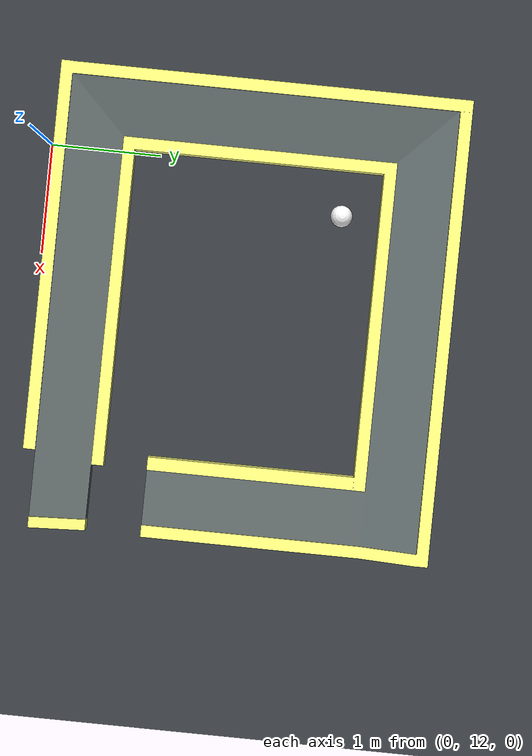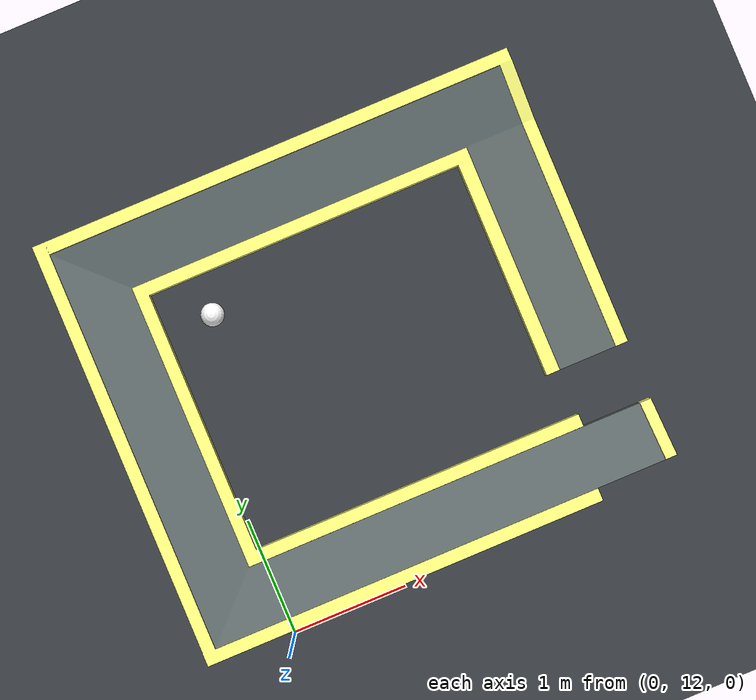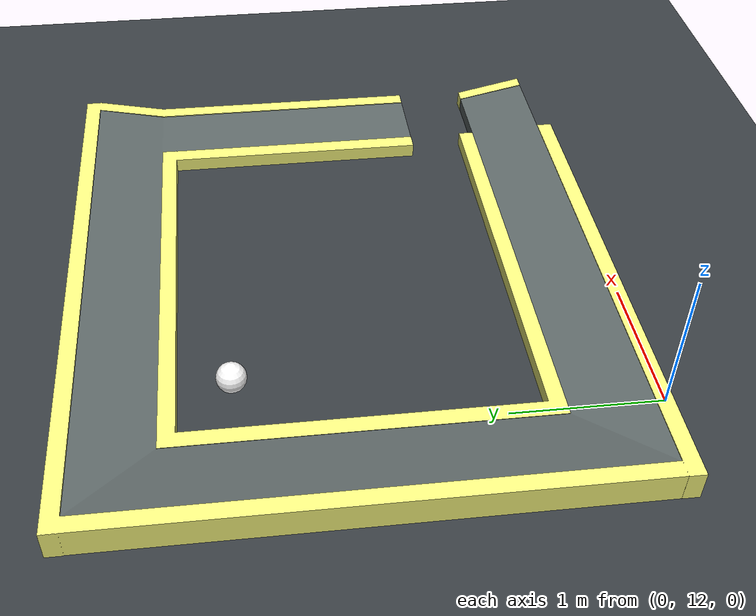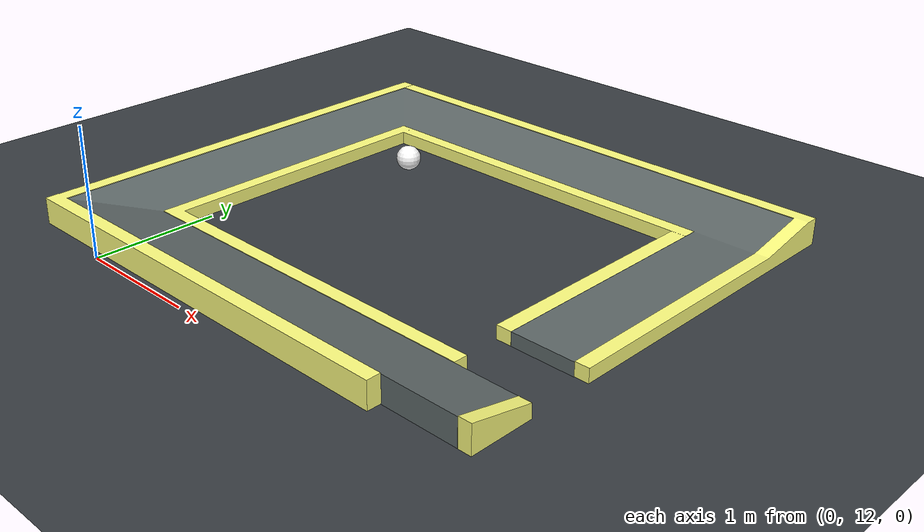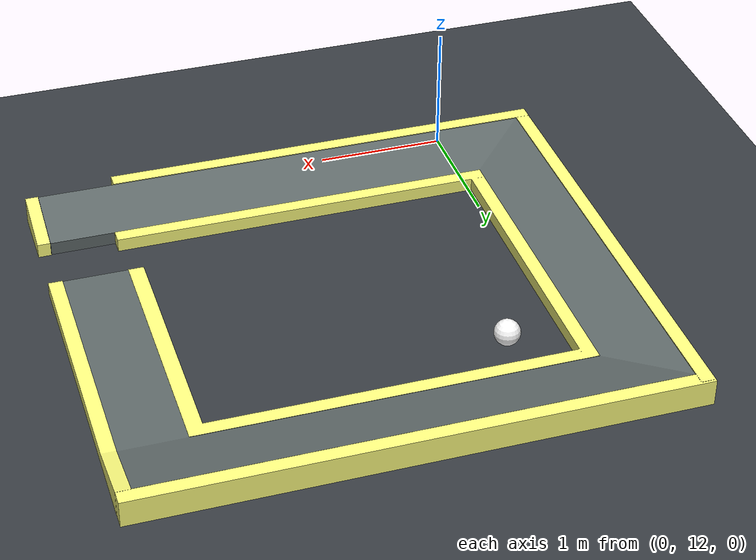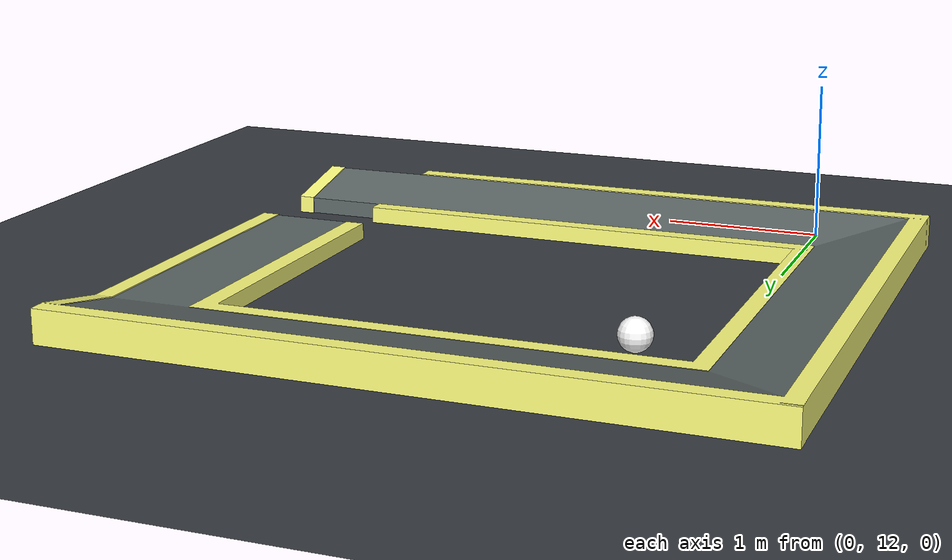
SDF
<?xml version="1.0" ?>
<sdf version="1.5">
    <world name="earth">

        <plugin name="gazebo_ros_state" filename="libgazebo_ros_state.so">
            <ros>
                <namespace>/gazebo</namespace>
            </ros>
            <update_rate>50.0</update_rate>
        </plugin>

        <physics type="ode">
            <max_step_size>0.001</max_step_size>
            <real_time_factor>1</real_time_factor>
            <real_time_update_rate>1000</real_time_update_rate>
            <gravity>0 0 -9.81</gravity>
            <ode>
                <solver>
                <type>quick</type>
                <min_step_size>0.0001</min_step_size>
                <iters>50</iters>
                <sor>1.3</sor>
                </solver>
                <constraints>
                <cfm>0.0</cfm>
                <erp>0.2</erp>
                </constraints>
            </ode>
        </physics>

        <scene>

        </scene>

        <include>
            <uri>model://sun</uri>
        </include>

        <model name="ground_plane">
            <static>true</static>
            <link name="link">
                <collision name="collision">
                    <geometry>
                    <plane>
                            <normal>0 0 1</normal>
                            <size>100 100</size>
                    </plane>
                    </geometry>
                <surface>
                    <friction>
                        <ode>
                        <mu>100</mu>
                        <mu2>50</mu2>
                        </ode>
                    </friction>
                </surface>
                </collision>
                <visual name="visual">
                    <cast_shadows>false</cast_shadows>
                    <geometry>
                    <plane>
                        <normal>0 0 1</normal>
                        <size>100 100</size>
                    </plane>
                    </geometry>
                    <material>
                        <ambient>0.22 0.24 0.26 1</ambient>
                            <diffuse>0.22 0.24 0.26 1</diffuse>
                    </material>
                </visual>
            </link>
        </model>

        <model name='race'>
            <pose>1.5 5.87 1.18 0 0 -1.57</pose>
            <static>true</static>

            <link name='3aea_border'>
                <collision name="3aea_border_collision">
                    <geometry>
                        <mesh>
                            <uri>/home/cyberdog_sim/src/cyberdog_simulator/cyberdog_gazebo/model/race2026_meshes/3_border.stl</uri>
                            <scale>0.01 0.01 0.01</scale>
                        </mesh>
                    </geometry>
                </collision>
                <visual name="3aea_border_visual">
                    <geometry>
                        <mesh>
                            <uri>/home/cyberdog_sim/src/cyberdog_simulator/cyberdog_gazebo/model/race2026_meshes/3_border.stl</uri>
                            <scale>0.01 0.01 0.01</scale>
                        </mesh>
                    </geometry>
                    <material>
                        <ambient>1 1 0.5 1</ambient>
                        <diffuse>1 1 0.5 1</diffuse>
                    </material>
                </visual>
            </link>

            <link name='3aea_slope'>
                <collision name="3aea_slope_collision">
                    <geometry>
                        <mesh>
                            <uri>/home/cyberdog_sim/src/cyberdog_simulator/cyberdog_gazebo/model/race2026_meshes/3_slope.stl</uri>
                            <scale>0.01 0.01 0.01</scale>
                        </mesh>
                    </geometry>
                </collision>
                <visual name="3aea_slope_visual">
                    <geometry>
                        <mesh>
                            <uri>/home/cyberdog_sim/src/cyberdog_simulator/cyberdog_gazebo/model/race2026_meshes/3_slope.stl</uri>
                            <scale>0.01 0.01 0.01</scale>
                        </mesh>
                    </geometry>
                    <material>
                        <ambient>0.37 0.41 0.41 1</ambient>
                        <diffuse>0.37 0.41 0.41 1</diffuse>
                    </material>
                </visual>
            </link>
        </model>

        <model name="football3">
            <pose>0.4 14.7 0.1 0 0 0</pose>
            <link name='3aea_football'>
                <inertial>
                    <mass>0.35</mass>
                    <inertia>
                    <ixx>0.00014</ixx>
                    <ixy>0.0</ixy>
                    <ixz>0.0</ixz>
                    <iyy>0.00014</iyy>
                    <iyz>0.0</iyz>
                    <izz>0.00014</izz>
                    </inertia>
                </inertial>
                <collision name="3aea_football_collision">
                    <geometry>
                        <sphere>
                            <radius>0.1</radius>
                        </sphere>
                    </geometry>
                </collision>
                <visual name="3aea_football_visual">
                    <geometry>
                        <sphere>
                            <radius>0.1</radius>
                        </sphere>
                    </geometry>
                    <material>
                        <ambient>1 1 1 1</ambient>
                        <diffuse>1 1 1 1</diffuse>
                    </material>
                </visual>
            </link>
        </model>

    </world>
</sdf>
